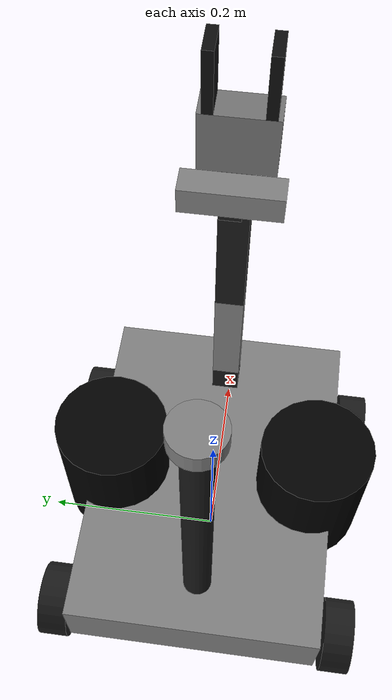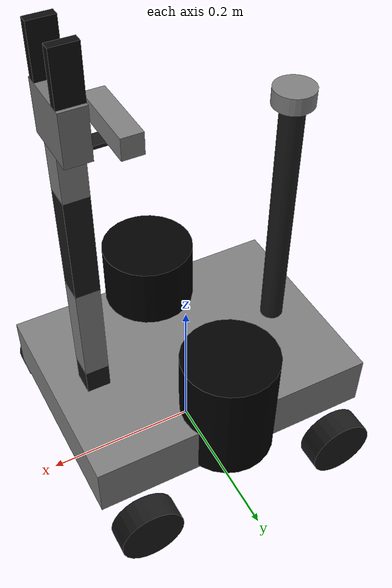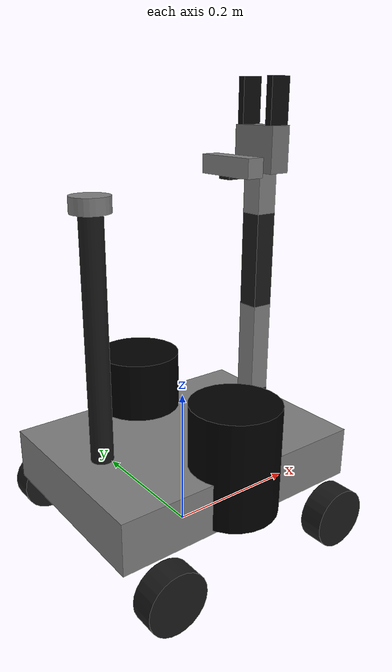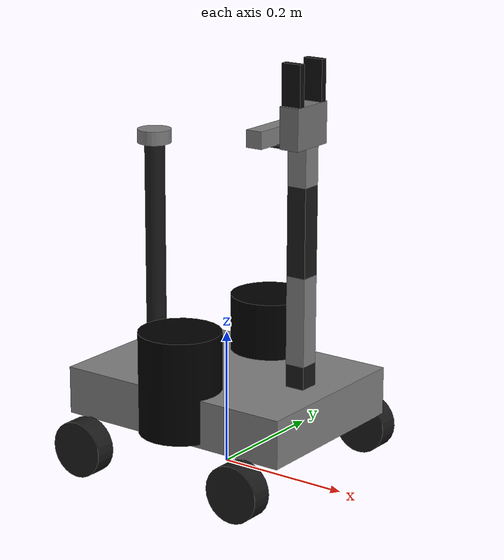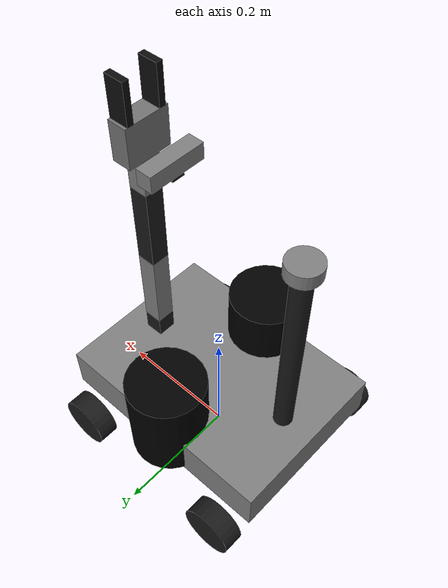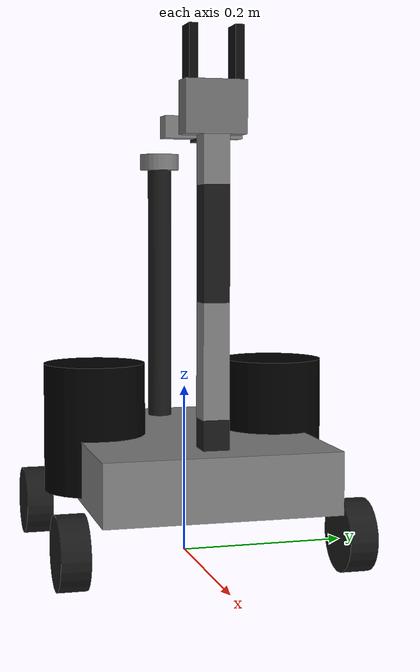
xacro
<?xml version="1.0"?>
<robot name="four_wheel_robot" xmlns:xacro="http://www.ros.org/wiki/xacro">
  <xacro:arg name="arm_initial_positions_file" default="$(find robot_description)/config/arm_initial_positions.yaml" />

  <!-- 共享模型定义 -->
  <xacro:include filename="$(find robot_description)/urdf/model/robot.model.xacro" />

  <!-- Custom wheel ros2_control hardware interface -->
  <xacro:include filename="$(find robot_description)/urdf/control/custom.control.xacro" />

  <!-- MoveIt arm ros2_control interface -->
  <xacro:include filename="$(find robot_description)/urdf/control/arm_moveit.control.xacro" />

  <xacro:robot_custom_ros2_control />
  <xacro:robot_arm_moveit_ros2_control
    name="ArmMoveItSystem"
    initial_positions_file="$(arg arm_initial_positions_file)" />

</robot>

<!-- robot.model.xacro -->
<robot xmlns:xacro="http://www.ros.org/wiki/xacro">

  <!-- ========== 公共属性 ========== -->
  <!-- 机器人常量 -->
  <xacro:property name="PI" value="3.1415926535897931"/>

  <!-- 底盘属性 -->
  <xacro:property name="chassis_length" value="0.370"/>
  <xacro:property name="chassis_width" value="0.270"/>
  <xacro:property name="chassis_height" value="0.071"/>
  <xacro:property name="chassis_mass" value="5.0"/>

  <!-- 轮子属性 -->
  <xacro:property name="wheel_radius" value="0.04175"/>
  <xacro:property name="wheel_thickness" value="0.033"/>
  <xacro:property name="wheel_mass" value="0.5"/>

  <!-- 安装位置偏移 -->
  <xacro:property name="wheel_z_offset" value="0.06975"/>
  <xacro:property name="wheel_x_offset" value="0.138"/>
  <xacro:property name="wheel_y_offset" value="0.162"/>

  <!-- ========== 底盘 ========== -->
  <xacro:include filename="robot.chassis.xacro"/>

  <!-- ========== 轮子 ========== -->
  <xacro:include filename="robot.wheels.xacro"/>

  <!-- ========== 激光雷达 ========== -->
  <xacro:include filename="robot.lidar.xacro"/>

  <!-- ========== 机械臂 ========== -->
  <xacro:include filename="robot.arm.xacro"/>

  <!-- ========== 侧边桶子 ========== -->
  <xacro:include filename="robot.barrel.xacro"/>
  <xacro:barrel name="left_barrel" y_sign="1"/>
  <xacro:barrel name="right_barrel" y_sign="-1"/>

  <gazebo reference="left_barrel">
    <material>Gazebo/DarkGrey</material>
  </gazebo>
  <gazebo reference="right_barrel">
    <material>Gazebo/DarkGrey</material>
  </gazebo>

  <!-- ========== 深度相机（挂在机械臂末端 arm_link4 上） ========== -->
  <xacro:include filename="robot.camera.xacro"/>

</robot>

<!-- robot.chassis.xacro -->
<robot xmlns:xacro="http://www.ros.org/wiki/xacro">

  <!-- ========== 底盘 ========== -->
  <!-- 底盘链接 (参考坐标系) -->
  <link name="base_link">
    <visual>
      <origin xyz="0 0 0" rpy="0 0 0"/>
      <geometry>
        <box size="${chassis_length} ${chassis_width} ${chassis_height}"/>
      </geometry>
      <material name="grey">
        <color rgba="0.5 0.5 0.5 1.0"/>
      </material>
    </visual>
    <collision>
      <origin xyz="0 0 0" rpy="0 0 0"/>
      <geometry>
        <box size="${chassis_length} ${chassis_width} ${chassis_height}"/>
      </geometry>
    </collision>
    <inertial>
      <origin xyz="0 0 0" rpy="0 0 0"/>
      <mass value="${chassis_mass}"/>
      <inertia ixx="${chassis_mass / 12.0 * (chassis_width**2 + chassis_height**2)}"
               ixy="0" ixz="0"
               iyy="${chassis_mass / 12.0 * (chassis_length**2 + chassis_height**2)}"
               iyz="0"
               izz="${chassis_mass / 12.0 * (chassis_length**2 + chassis_width**2)}"/>
    </inertial>
  </link>

  <link name="base_footprint" />
  <joint name="base_joint" type="fixed">
    <parent link="base_footprint" />
    <child link="base_link" />
    <origin xyz="0.0 0.0 ${wheel_z_offset + wheel_radius - 0.001}" rpy="0 0 0" />
  </joint>

  <link name="imu_link" />
  <joint name="imu_joint" type="fixed">
    <parent link="base_link" />
    <child link="imu_link" />
    <origin xyz="0 0 0" rpy="0 0 0" />
  </joint>

  <!-- ========== Gazebo 材质 ========== -->
  <gazebo reference="base_link">
    <material>Gazebo/Grey</material>
  </gazebo>

</robot>

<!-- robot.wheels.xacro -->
<robot xmlns:xacro="http://www.ros.org/wiki/xacro">

  <!-- ========== 轮子宏 ========== -->
  <xacro:macro name="wheel" params="name x_sign y_sign">
    <link name="${name}">
      <visual>
        <origin xyz="0 0 0" rpy="${PI/2} 0 0"/>
        <geometry>
          <cylinder radius="${wheel_radius}" length="${wheel_thickness}"/>
        </geometry>
        <material name="black">
          <color rgba="0.1 0.1 0.1 1.0"/>
        </material>
      </visual>
      <collision>
        <origin xyz="0 0 0" rpy="${PI/2} 0 0"/>
        <geometry>
          <cylinder radius="${wheel_radius}" length="${wheel_thickness}"/>
        </geometry>
      </collision>
      <inertial>
        <origin xyz="0 0 0" rpy="0 0 0"/>
        <mass value="${wheel_mass}"/>
        <inertia ixx="${wheel_mass / 12.0 * (3*wheel_radius**2 + wheel_thickness**2)}"
                 ixy="0" ixz="0"
                 iyy="${wheel_mass / 12.0 * (3*wheel_radius**2 + wheel_thickness**2)}"
                 iyz="0"
                 izz="${wheel_mass / 2.0 * wheel_radius**2}"/>
      </inertial>
    </link>

    <joint name="${name}_joint" type="continuous">
      <parent link="base_link"/>
      <child link="${name}"/>
      <origin xyz="${x_sign * wheel_x_offset} ${y_sign * wheel_y_offset} ${-wheel_z_offset}" rpy="0 0 0"/>
      <axis xyz="0 1 0"/>
    </joint>
  </xacro:macro>

  <!-- ========== 轮子实例化 ========== -->
  <xacro:wheel name="front_left_wheel"  x_sign="1"  y_sign="1"/>
  <xacro:wheel name="front_right_wheel" x_sign="1"  y_sign="-1"/>
  <xacro:wheel name="rear_left_wheel"   x_sign="-1" y_sign="1"/>
  <xacro:wheel name="rear_right_wheel"  x_sign="-1" y_sign="-1"/>

  <!-- ========== Gazebo 材质 ========== -->
  <xacro:macro name="wheel_gazebo" params="name">
    <gazebo reference="${name}">
      <material>Gazebo/Black</material>
      <mu1 value="0.2"/>
      <mu2 value="0.2"/>
    </gazebo>
  </xacro:macro>
  <xacro:wheel_gazebo name="front_left_wheel"/>
  <xacro:wheel_gazebo name="front_right_wheel"/>
  <xacro:wheel_gazebo name="rear_left_wheel"/>
  <xacro:wheel_gazebo name="rear_right_wheel"/>

</robot>

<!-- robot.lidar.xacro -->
<robot xmlns:xacro="http://www.wiki.ros.org/xacro">

  <!-- ========== 激光雷达属性 ========== -->
  <xacro:property name="lidar_radius" value="0.025"/>
  <xacro:property name="lidar_height" value="0.020"/>
  <xacro:property name="lidar_mass" value="0.05"/>
  <xacro:property name="lidar_offset_z" value="0.035"/>

  <!-- ========== 支架属性 ========== -->
  <xacro:property name="bracket_radius" value="0.015"/>
  <xacro:property name="bracket_height" value="0.318"/>
  <xacro:property name="bracket_mass" value="0.02"/>

  <!-- ========== 支架链接 ========== -->
  <link name="lidar_bracket">
    <visual>
      <origin xyz="0 0 0" rpy="0 0 0"/>
      <geometry>
        <cylinder radius="${bracket_radius}" length="${bracket_height}"/>
      </geometry>
      <material name="black">
        <color rgba="0.1 0.1 0.1 1.0"/>
      </material>
    </visual>
    <collision>
      <origin xyz="0 0 0" rpy="0 0 0"/>
      <geometry>
        <cylinder radius="${bracket_radius}" length="${bracket_height}"/>
      </geometry>
    </collision>
    <inertial>
      <origin xyz="0 0 0" rpy="0 0 0"/>
      <mass value="${bracket_mass}"/>
      <inertia ixx="${bracket_mass / 12.0 * (3*bracket_radius**2 + bracket_height**2)}"
               ixy="0" ixz="0"
               iyy="${bracket_mass / 12.0 * (3*bracket_radius**2 + bracket_height**2)}"
               iyz="0"
               izz="${bracket_mass / 2.0 * bracket_radius**2}"/>
    </inertial>
  </link>

  <!-- 支架与底盘的固定关节 -->
  <joint name="lidar_bracket_joint" type="fixed">
    <parent link="base_link"/>
    <child link="lidar_bracket"/>
    <origin xyz="${-(chassis_length/2 - 0.055)} 0 ${chassis_height/2 + bracket_height/2}" rpy="0 0 0"/>
  </joint>

  <!-- ========== 激光雷达传感器链接 ========== -->
  <link name="lidar_link">
    <visual>
      <origin xyz="0 0 0" rpy="0 0 0"/>
      <geometry>
        <cylinder radius="${lidar_radius}" length="${lidar_height}"/>
      </geometry>
      <material name="grey">
        <color rgba="0.5 0.5 0.5 1.0"/>
      </material>
    </visual>
    <collision>
      <origin xyz="0 0 0" rpy="0 0 0"/>
      <geometry>
        <cylinder radius="${lidar_radius}" length="${lidar_height}"/>
      </geometry>
    </collision>
    <inertial>
      <origin xyz="0 0 0" rpy="0 0 0"/>
      <mass value="${lidar_mass}"/>
      <inertia ixx="${lidar_mass / 12.0 * (3*lidar_radius**2 + lidar_height**2)}"
               ixy="0" ixz="0"
               iyy="${lidar_mass / 12.0 * (3*lidar_radius**2 + lidar_height**2)}"
               iyz="0"
               izz="${lidar_mass / 2.0 * lidar_radius**2}"/>
    </inertial>
  </link>

  <!-- 激光雷达与支架的固定关节 -->
  <joint name="lidar_joint" type="fixed">
    <parent link="lidar_bracket"/>
    <child link="lidar_link"/>
    <origin xyz="0 0 ${bracket_height/2 + lidar_height/2}" rpy="0 0 0"/>
  </joint>

  <!-- ========== Gazebo 材质 ========== -->
  <gazebo reference="lidar_bracket">
    <material>Gazebo/Black</material>
  </gazebo>

  <gazebo reference="lidar_link">
    <material>Gazebo/Grey</material>
  </gazebo>

</robot>

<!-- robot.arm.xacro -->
<robot xmlns:xacro="http://www.ros.org/wiki/xacro">

  <!-- ========== 机械臂属性 ========== -->
  <xacro:property name="arm_l1" value="0.0338648"/>
  <xacro:property name="arm_l2" value="0.129416"/>
  <xacro:property name="arm_l3" value="0.129444"/>
  <xacro:property name="arm_l4" value="0.05448"/>
  <xacro:property name="arm_l5" value="0.1183848"/>

  <xacro:property name="arm_w" value="0.030"/>

  <xacro:property name="gripper_base_length" value="${arm_w}"/>
  <xacro:property name="gripper_base_width" value="0.070"/>
  <xacro:property name="gripper_base_height" value="0.0593848"/>
  <xacro:property name="gripper_finger_length" value="${arm_l5 - gripper_base_height}"/>
  <xacro:property name="gripper_finger_width" value="${arm_w}"/>
  <xacro:property name="gripper_finger_thickness" value="0.010"/>
  <xacro:property name="gripper_finger_y_offset" value="0.026"/>

  <xacro:property name="arm_m0" value="0.3"/>
  <xacro:property name="arm_m1" value="0.4"/>
  <xacro:property name="arm_m2" value="0.3"/>
  <xacro:property name="arm_m3" value="0.1"/>
  <xacro:property name="arm_m4" value="0.1"/>
  <xacro:property name="gripper_base_mass" value="${arm_m4 * 0.70}"/>
  <xacro:property name="gripper_finger_mass" value="${arm_m4 * 0.15}"/>
  <xacro:property name="tool_virtual_mass" value="0.001"/>
  <xacro:property name="tool_virtual_joint_damping" value="5.0"/>
  <xacro:property name="tool_virtual_joint_friction" value="0.1"/>

  <xacro:property name="arm_origin_x" value="${chassis_length/2 - 0.055}"/>
  <xacro:property name="arm_origin_y" value="0.0"/>
  <xacro:property name="arm_origin_z" value="${chassis_height/2}"/>

  <!-- ========== 长方体惯性宏 ========== -->
  <xacro:macro name="box_inertia" params="mass w h">
    <inertia ixx="${mass/12.0 * (w*w + h*h)}" ixy="0" ixz="0"
             iyy="${mass/12.0 * (w*w + h*h)}" iyz="0"
             izz="${mass/6.0 * w*w}"/>
  </xacro:macro>

  <xacro:macro name="box_inertia_xyz" params="mass x y z">
    <inertia ixx="${mass/12.0 * (y*y + z*z)}" ixy="0" ixz="0"
             iyy="${mass/12.0 * (x*x + z*z)}" iyz="0"
             izz="${mass/12.0 * (x*x + y*y)}"/>
  </xacro:macro>

  <!-- ========== 连杆宏 ========== -->
  <xacro:macro name="arm_link" params="name length mass color">
    <link name="${name}">
      <visual>
        <origin xyz="0 0 ${length/2}" rpy="0 0 0"/>
        <geometry>
          <box size="${arm_w} ${arm_w} ${length}"/>
        </geometry>
        <material name="${color}">
          <color rgba="${color} 1.0"/>
        </material>
      </visual>
      <collision>
        <origin xyz="0 0 ${length/2}" rpy="0 0 0"/>
        <geometry>
          <box size="${arm_w} ${arm_w} ${length}"/>
        </geometry>
      </collision>
      <inertial>
        <origin xyz="0 0 ${length/2}" rpy="0 0 0"/>
        <mass value="${mass}"/>
        <xacro:box_inertia mass="${mass}" w="${arm_w}" h="${length}"/>
      </inertial>
    </link>
  </xacro:macro>

  <xacro:macro name="gripper_finger" params="name y_sign">
    <joint name="${name}_joint" type="fixed">
      <parent link="arm_link4"/>
      <child link="${name}"/>
      <origin xyz="0 ${y_sign * gripper_finger_y_offset} ${gripper_base_height}" rpy="0 0 0"/>
    </joint>

    <link name="${name}">
      <visual>
        <origin xyz="0 0 ${gripper_finger_length/2}" rpy="0 0 0"/>
        <geometry>
          <box size="${gripper_finger_width} ${gripper_finger_thickness} ${gripper_finger_length}"/>
        </geometry>
        <material name="gripper_finger_black">
          <color rgba="0.05 0.05 0.05 1.0"/>
        </material>
      </visual>
      <collision>
        <origin xyz="0 0 ${gripper_finger_length/2}" rpy="0 0 0"/>
        <geometry>
          <box size="${gripper_finger_width} ${gripper_finger_thickness} ${gripper_finger_length}"/>
        </geometry>
      </collision>
      <inertial>
        <origin xyz="0 0 ${gripper_finger_length/2}" rpy="0 0 0"/>
        <mass value="${gripper_finger_mass}"/>
        <xacro:box_inertia_xyz mass="${gripper_finger_mass}" x="${gripper_finger_width}" y="${gripper_finger_thickness}" z="${gripper_finger_length}"/>
      </inertial>
    </link>
  </xacro:macro>

  <joint name="arm_base_joint" type="revolute">
    <parent link="base_link"/>
    <child link="arm_link0"/>
    <origin xyz="${arm_origin_x} ${arm_origin_y} ${arm_origin_z}" rpy="0 0 0"/>
    <axis xyz="0 0 1"/>
    <limit lower="-3.141592653589793" upper="3.141592653589793" effort="10" velocity="3.14"/>
  </joint>

  <xacro:arm_link name="arm_link0" length="${arm_l1}" mass="${arm_m0}" color="0.1 0.1 0.1"/>
  <gazebo reference="arm_link0">
    <material>Gazebo/DarkGrey</material>
  </gazebo>

  <joint name="arm_shoulder_joint" type="revolute">
    <parent link="arm_link0"/>
    <child link="arm_link1"/>
    <origin xyz="0 0 ${arm_l1}" rpy="0 0 0"/>
    <axis xyz="0 1 0"/>
    <limit lower="-2.0943951023931953" upper="2.0943951023931953" effort="10" velocity="3.14"/>
  </joint>

  <xacro:arm_link name="arm_link1" length="${arm_l2}" mass="${arm_m1}" color="0.5 0.5 0.5"/>
  <gazebo reference="arm_link1">
    <material>Gazebo/Grey</material>
  </gazebo>

  <joint name="arm_elbow_joint" type="revolute">
    <parent link="arm_link1"/>
    <child link="arm_link2"/>
    <origin xyz="0 0 ${arm_l2}" rpy="0 0 0"/>
    <axis xyz="0 1 0"/>
    <limit lower="-2.0943951023931953" upper="2.0943951023931953" effort="10" velocity="3.14"/>
  </joint>

  <xacro:arm_link name="arm_link2" length="${arm_l3}" mass="${arm_m2}" color="0.1 0.1 0.1"/>
  <gazebo reference="arm_link2">
    <material>Gazebo/DarkGrey</material>
  </gazebo>

  <joint name="arm_wrist_joint" type="revolute">
    <parent link="arm_link2"/>
    <child link="arm_link3"/>
    <origin xyz="0 0 ${arm_l3}" rpy="0 0 0"/>
    <axis xyz="0 1 0"/>
    <limit lower="-2.0943951023931953" upper="2.0943951023931953" effort="10" velocity="3.14"/>
  </joint>

  <xacro:arm_link name="arm_link3" length="${arm_l4}" mass="${arm_m3}" color="0.5 0.5 0.5"/>
  <gazebo reference="arm_link3">
    <material>Gazebo/Grey</material>
  </gazebo>

  <joint name="arm_tool_rotate_joint" type="revolute">
    <parent link="arm_link3"/>
    <child link="arm_link4"/>
    <origin xyz="0 0 ${arm_l4}" rpy="0 0 0"/>
    <axis xyz="0 0 1"/>
    <limit lower="-2.0943951023931953" upper="2.0943951023931953" effort="10" velocity="3.14"/>
  </joint>

  <link name="arm_link4">
    <visual>
      <origin xyz="0 0 ${gripper_base_height/2}" rpy="0 0 0"/>
      <geometry>
        <box size="${gripper_base_length} ${gripper_base_width} ${gripper_base_height}"/>
      </geometry>
      <material name="gripper_base_grey">
        <color rgba="0.45 0.45 0.45 1.0"/>
      </material>
    </visual>
    <collision>
      <origin xyz="0 0 ${gripper_base_height/2}" rpy="0 0 0"/>
      <geometry>
        <box size="${gripper_base_length} ${gripper_base_width} ${gripper_base_height}"/>
      </geometry>
    </collision>
    <inertial>
      <origin xyz="0 0 ${gripper_base_height/2}" rpy="0 0 0"/>
      <mass value="${gripper_base_mass}"/>
      <xacro:box_inertia_xyz mass="${gripper_base_mass}" x="${gripper_base_length}" y="${gripper_base_width}" z="${gripper_base_height}"/>
    </inertial>
  </link>
  <gazebo reference="arm_link4">
    <material>Gazebo/Grey</material>
  </gazebo>

  <xacro:gripper_finger name="left_gripper_finger" y_sign="1"/>
  <xacro:gripper_finger name="right_gripper_finger" y_sign="-1"/>
  <gazebo reference="left_gripper_finger">
    <material>Gazebo/Black</material>
  </gazebo>
  <gazebo reference="right_gripper_finger">
    <material>Gazebo/Black</material>
  </gazebo>

  <joint name="virtual_tool_roll_joint" type="continuous">
    <parent link="arm_link4"/>
    <child link="tool_roll_link"/>
    <origin xyz="0 0 ${arm_l5}" rpy="0 0 0"/>
    <axis xyz="1 0 0"/>
    <limit effort="1" velocity="3.14"/>
    <dynamics damping="${tool_virtual_joint_damping}" friction="${tool_virtual_joint_friction}"/>
  </joint>

  <link name="tool_roll_link">
    <inertial>
      <mass value="${tool_virtual_mass}"/>
      <inertia ixx="1e-6" ixy="0" ixz="0" iyy="1e-6" iyz="0" izz="1e-6"/>
    </inertial>
  </link>

  <joint name="virtual_tool_pitch_joint" type="continuous">
    <parent link="tool_roll_link"/>
    <child link="tool_pitch_link"/>
    <origin xyz="0 0 0" rpy="0 0 0"/>
    <axis xyz="0 1 0"/>
    <limit effort="1" velocity="3.14"/>
    <dynamics damping="${tool_virtual_joint_damping}" friction="${tool_virtual_joint_friction}"/>
  </joint>

  <link name="tool_pitch_link">
    <inertial>
      <mass value="${tool_virtual_mass}"/>
      <inertia ixx="1e-6" ixy="0" ixz="0" iyy="1e-6" iyz="0" izz="1e-6"/>
    </inertial>
  </link>

  <joint name="virtual_tool_yaw_joint" type="continuous">
    <parent link="tool_pitch_link"/>
    <child link="tool0"/>
    <origin xyz="0 0 0" rpy="0 0 0"/>
    <axis xyz="0 0 1"/>
    <limit effort="1" velocity="3.14"/>
    <dynamics damping="${tool_virtual_joint_damping}" friction="${tool_virtual_joint_friction}"/>
  </joint>

  <link name="tool0">
    <inertial>
      <mass value="${tool_virtual_mass}"/>
      <inertia ixx="1e-6" ixy="0" ixz="0" iyy="1e-6" iyz="0" izz="1e-6"/>
    </inertial>
  </link>

</robot>

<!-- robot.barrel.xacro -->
<robot xmlns:xacro="http://www.ros.org/wiki/xacro">

  <!-- ========== 属性 ========== -->
  <xacro:property name="barrel_radius" value="0.06"/>
  <xacro:property name="barrel_height" value="0.15"/>
  <xacro:property name="barrel_bottom_clearance" value="0.006"/>
  <xacro:property name="barrel_mass" value="0.3"/>

  <!-- y 方向偏移（左右两侧） -->
  <xacro:property name="barrel_y_offset" value="0.110"/>

  <xacro:macro name="barrel" params="name y_sign">
    <link name="${name}">
      <visual>
        <origin xyz="0 0 0" rpy="0 0 0"/>
        <geometry>
          <cylinder radius="${barrel_radius}" length="${barrel_height}"/>
        </geometry>
        <material name="black">
          <color rgba="0 0 0 1.0"/>
        </material>
      </visual>
      <collision>
        <origin xyz="0 0 0" rpy="0 0 0"/>
        <geometry>
          <cylinder radius="${barrel_radius}" length="${barrel_height}"/>
        </geometry>
      </collision>
      <inertial>
        <origin xyz="0 0 0" rpy="0 0 0"/>
        <mass value="${barrel_mass}"/>
        <inertia
          ixx="${barrel_mass / 12.0 * (3 * barrel_radius**2 + barrel_height**2)}"
          ixy="0" ixz="0"
          iyy="${barrel_mass / 12.0 * (3 * barrel_radius**2 + barrel_height**2)}"
          iyz="0"
          izz="${barrel_mass / 2.0 * barrel_radius**2}"/>
      </inertial>
    </link>

    <joint name="${name}_joint" type="fixed">
      <parent link="base_link"/>
      <child link="${name}"/>
      <origin xyz="0 ${y_sign * barrel_y_offset} ${-chassis_height / 2.0 + barrel_bottom_clearance + barrel_height / 2.0}"
              rpy="0 0 0"/>
    </joint>
  </xacro:macro>

</robot>

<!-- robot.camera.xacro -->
<robot xmlns:xacro="http://www.wiki.ros.org/xacro">

  <!-- ========== 相机支架属性 ========== -->
  <xacro:property name="camera_bracket_length" value="0.020"/>
  <xacro:property name="camera_bracket_width" value="0.0042"/>
  <xacro:property name="camera_bracket_height" value="0.0482060266977644"/>
  <xacro:property name="camera_bracket_mount_length" value="0.0357060266977644"/>
  <xacro:property name="camera_bracket_origin_y" value="0.0116030133488822"/>
  <xacro:property name="camera_bracket_mass" value="0.02"/>

  <!-- ========== 相机属性 ========== -->
  <xacro:property name="camera_box_length" value="0.025"/>
  <xacro:property name="camera_box_width" value="0.090"/>
  <xacro:property name="camera_box_height" value="0.025"/>
  <xacro:property name="camera_mass" value="0.03"/>

  <!-- ========== 相机支架链接 ========== -->
  <link name="camera_bracket">
    <visual>
      <origin xyz="0 ${camera_bracket_origin_y} 0" rpy="0 0 0"/>
      <geometry>
        <box size="${camera_bracket_length} ${camera_bracket_height} ${camera_bracket_width}"/>
      </geometry>
      <material name="black">
        <color rgba="0.1 0.1 0.1 1.0"/>
      </material>
    </visual>
    <collision>
      <origin xyz="0 ${camera_bracket_origin_y} 0" rpy="0 0 0"/>
      <geometry>
        <box size="${camera_bracket_length} ${camera_bracket_height} ${camera_bracket_width}"/>
      </geometry>
    </collision>
    <inertial>
      <origin xyz="0 ${camera_bracket_origin_y} 0" rpy="0 0 0"/>
      <mass value="${camera_bracket_mass}"/>
      <inertia ixx="${camera_bracket_mass / 12.0 * (camera_bracket_height**2 + camera_bracket_width**2)}"
               ixy="0" ixz="0"
               iyy="${camera_bracket_mass / 12.0 * (camera_bracket_length**2 + camera_bracket_width**2)}"
               iyz="0"
               izz="${camera_bracket_mass / 12.0 * (camera_bracket_length**2 + camera_bracket_height**2)}"/>
    </inertial>
  </link>

  <joint name="camera_bracket_joint" type="fixed">
    <parent link="arm_link3"/>
    <child link="camera_bracket"/>
    <origin xyz="-0.0507060266977644 0 0.0505384841187764" rpy="0 0 ${-PI/2}"/>
  </joint>

  <!-- ========== 相机链接 ========== -->
  <link name="camera_link">
    <visual>
      <origin xyz="0 -0.032 0" rpy="0 0 0"/>
      <geometry>
        <box size="${camera_box_length} ${camera_box_width} ${camera_box_height}"/>
      </geometry>
      <material name="grey">
        <color rgba="0.5 0.5 0.5 1.0"/>
      </material>
    </visual>
    <collision>
      <origin xyz="0 -0.032 0" rpy="0 0 0"/>
      <geometry>
        <box size="${camera_box_length} ${camera_box_width} ${camera_box_height}"/>
      </geometry>
    </collision>
    <inertial>
      <origin xyz="0 -0.032 0" rpy="0 0 0"/>
      <mass value="${camera_mass}"/>
      <inertia ixx="${camera_mass / 12.0 * (camera_box_width**2 + camera_box_height**2)}"
               ixy="0" ixz="0"
               iyy="${camera_mass / 12.0 * (camera_box_length**2 + camera_box_height**2)}"
               iyz="0"
               izz="${camera_mass / 12.0 * (camera_box_length**2 + camera_box_width**2)}"/>
    </inertial>
  </link>

  <!-- 相机与支架的固定关节-->
  <joint name="camera_joint" type="fixed">
    <parent link="camera_bracket"/>
    <child link="camera_link"/>
    <origin xyz="-0.032 0 0.014475" rpy="${PI} ${-PI/2} ${-PI/2}"/>
  </joint>

  <!-- ========== 相机光学坐标框架 (ROS 相机惯例) ========== -->
  <link name="camera_optical_link"/>

  <joint name="camera_optical_joint" type="fixed">
    <parent link="camera_link"/>
    <child link="camera_optical_link"/>
    <origin xyz="0 0 0" rpy="-1.570795 0 -1.570795"/>
  </joint>

  <!-- ========== Gazebo 材质 ========== -->
  <gazebo reference="camera_bracket">
    <material>Gazebo/Black</material>
  </gazebo>

  <gazebo reference="camera_link">
    <material>Gazebo/Grey</material>
  </gazebo>

</robot>
